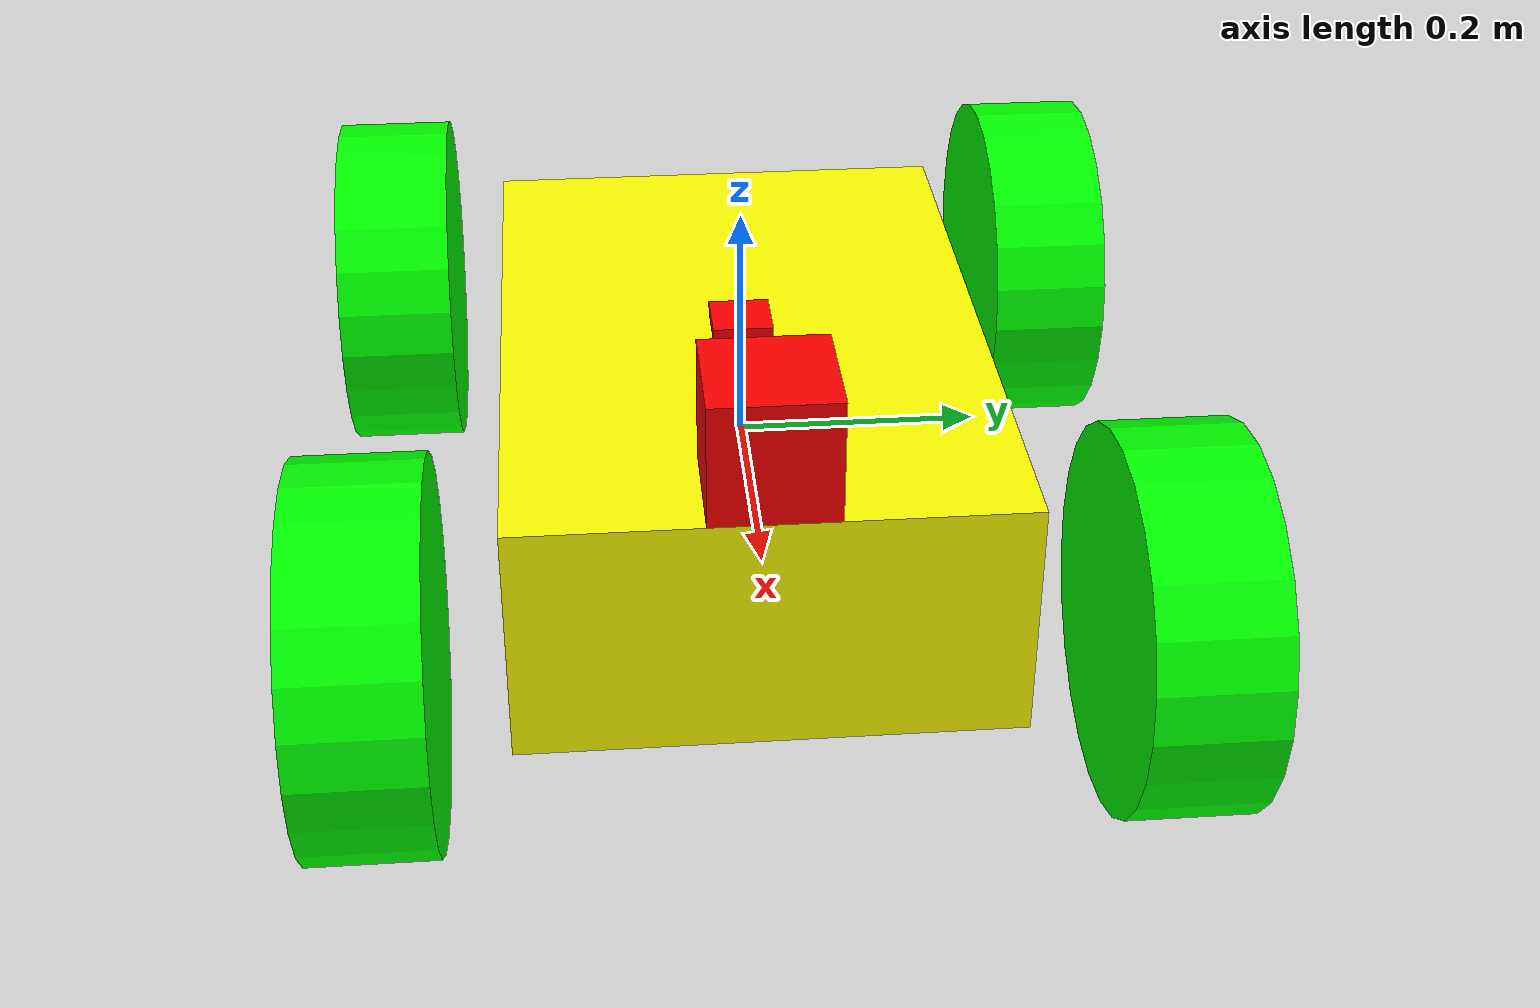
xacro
<?xml version="1.0"?>
<!-- rover -->
<robot name="rover" xmlns:xacro="http://www.ros.org/wiki/xacro">

  <!-- constants for robot dimensions -->
  <xacro:property name="PI" value="3.1415926535897931"/>

  <!-- define colors -->
  <material name="black">
    <color rgba="0.0 0.0 0.0 1.0"/>
  </material>

  <material name="red">
    <color rgba="${255/255} ${0/255} ${0/255} 1.0"/>
  </material>

  <material name="green">
    <color rgba="${0/255} ${255/255} ${0/255} 1.0"/>
  </material>

  <material name="blue">
    <color rgba="${0/255} ${0/255} ${255/255} 1.0"/>
  </material>

  <material name="yellow">
    <color rgba="${255/255} ${255/255} ${0/255} 1.0"/>
  </material>

  <material name="orange">
    <color rgba="${255/255} ${215/255} ${0/255} 1.0"/>
  </material>

  <!-- base dimensions -->
  <xacro:property name="base_x_size" value="0.6" />
  <xacro:property name="base_y_size" value="0.4" />
  <xacro:property name="base_z_size" value="0.2" />

  <!-- wheel properties -->
  <xacro:property name="wheel_length" value="0.1" />
  <xacro:property name="wheel_radius" value="0.15" />

  <!-- base link -->
  <link name="base_link">
    <visual>
      <geometry>
        <box size="${base_x_size} ${base_y_size} ${base_z_size}"/>
      </geometry>
      <material name="yellow"/>
    </visual>
    <collision>
      <geometry>
        <box size="${base_x_size} ${base_y_size} ${base_z_size}"/>
      </geometry>
    </collision>
    <inertial>
      <origin xyz="0 0 0" rpy="0 0 0"/>
      <mass value="1.0"/>
      <inertia
        ixx="0.133" ixy="0.0" ixz="0.0"
        iyy="0.133" iyz="0.0"
        izz="0.133"/>
    </inertial>
  </link>

  <!-- wheels -->
  <link name="front_left_wheel_link">
    <visual>
      <origin xyz="0 0 0" rpy="${PI/2} 0 0" />
      <geometry>
        <cylinder length="${wheel_length}" radius="${wheel_radius}" />
      </geometry>
      <material name="green"/>
    </visual>
    <collision>
      <origin xyz="0 0 0" rpy="${PI/2} 0 0" />
      <geometry>
        <cylinder length="${wheel_length}" radius="${wheel_radius}" />
      </geometry>
    </collision>
    <inertial>
      <origin xyz="0 0 0" rpy="0 0 0"/>
      <mass value="0.1"/>
      <inertia
        ixx="0.0133" ixy="0.0" ixz="0.0"
        iyy="0.0133" iyz="0.0"
        izz="0.0133"/>
    </inertial>
  </link>

  <joint name="front_left_wheel_joint" type="continuous">
    <parent link="base_link"/>
    <child link="front_left_wheel_link"/>
    <origin xyz="${(base_x_size/2)} ${(base_y_size/2 + wheel_length)} 0" rpy="0 0 0"/>
    <axis xyz="0 1 0"/>
    <dynamics damping="0.01"/>
  </joint>

  <link name="front_right_wheel_link">
    <visual>
      <origin xyz="0 0 0" rpy="${PI/2} 0 0" />
      <geometry>
        <cylinder length="${wheel_length}" radius="${wheel_radius}" />
      </geometry>
      <material name="green"/>
    </visual>
    <collision>
      <origin xyz="0 0 0" rpy="${PI/2} 0 0" />
      <geometry>
        <cylinder length="${wheel_length}" radius="${wheel_radius}" />
      </geometry>
    </collision>
    <inertial>
      <origin xyz="0 0 0" rpy="0 0 0"/>
      <mass value="0.1"/>
      <inertia
        ixx="0.0133" ixy="0.0" ixz="0.0"
        iyy="0.0133" iyz="0.0"
        izz="0.0133"/>
    </inertial>
  </link>

  <joint name="front_right_wheel_joint" type="continuous">
    <parent link="base_link"/>
    <child link="front_right_wheel_link"/>
    <origin xyz="${(base_x_size/2)} ${-1*(base_y_size/2 + wheel_length)} 0" rpy="0 0 0"/>
    <axis xyz="0 1 0"/>
    <dynamics damping="0.01"/>
  </joint>

  <link name="rear_left_wheel_link">
    <visual>
      <origin xyz="0 0 0" rpy="${PI/2} 0 0" />
      <geometry>
        <cylinder length="${wheel_length}" radius="${wheel_radius}" />
      </geometry>
      <material name="green"/>
    </visual>
    <collision>
      <origin xyz="0 0 0" rpy="${PI/2} 0 0" />
      <geometry>
        <cylinder length="${wheel_length}" radius="${wheel_radius}" />
      </geometry>
    </collision>
    <inertial>
      <origin xyz="0 0 0" rpy="0 0 0"/>
      <mass value="0.1"/>
      <inertia
        ixx="0.0133" ixy="0.0" ixz="0.0"
        iyy="0.0133" iyz="0.0"
        izz="0.0133"/>
    </inertial>
  </link>

  <joint name="rear_left_wheel_joint" type="continuous">
    <parent link="base_link"/>
    <child link="rear_left_wheel_link"/>
    <origin xyz="${-1*(base_x_size/2)} ${(base_y_size/2 + wheel_length)} 0" rpy="0 0 0"/>
    <axis xyz="0 1 0"/>
    <dynamics damping="0.01"/>
  </joint>

  <link name="rear_right_wheel_link">
    <visual>
      <origin xyz="0 0 0" rpy="${PI/2} 0 0" />
      <geometry>
        <cylinder length="${wheel_length}" radius="${wheel_radius}" />
      </geometry>
      <material name="green"/>
    </visual>
    <collision>
      <origin xyz="0 0 0" rpy="${PI/2} 0 0" />
      <geometry>
        <cylinder length="${wheel_length}" radius="${wheel_radius}" />
      </geometry>
    </collision>
    <inertial>
      <origin xyz="0 0 0" rpy="0 0 0"/>
      <mass value="0.1"/>
      <inertia
        ixx="0.0133" ixy="0.0" ixz="0.0"
        iyy="0.0133" iyz="0.0"
        izz="0.0133"/>
    </inertial>
  </link>

  <joint name="rear_right_wheel_joint" type="continuous">
    <parent link="base_link"/>
    <child link="rear_right_wheel_link"/>
    <origin xyz="${-1*(base_x_size/2)} ${-1*(base_y_size/2 + wheel_length)} 0" rpy="0 0 0"/>
    <axis xyz="0 1 0"/>
    <dynamics damping="0.01"/>
  </joint>

  <!-- sensors -->
  <link name="imu_link">
    <visual>
      <origin xyz="0 0 0" rpy="0 0 0" />
      <geometry>
        <box size="0.05 0.05 0.01"/>
      </geometry>
      <material name="red"/>
    </visual>
    <collision>
      <origin xyz="0 0 0" rpy="0 0 0" />
      <geometry>
        <box size="0.05 0.05 0.01"/>
      </geometry>
    </collision>
    <inertial>
      <origin xyz="0 0 0" rpy="0 0 0"/>
      <mass value="0.01"/>
      <inertia
        ixx="0.00133" ixy="0.0" ixz="0.0"
        iyy="0.00133" iyz="0.0"
        izz="0.00133"/>
    </inertial>
  </link>
  <joint name="imu_joint" type="fixed">
    <parent link="base_link"/>
    <child link="imu_link"/>
    <origin xyz="0 0 ${base_z_size/2+0.005}" rpy="0 0 0"/>
    <axis xyz="0 0 1"/>
  </joint>

  <link name="lidar_link">
    <visual>
      <origin xyz="0 0 0" rpy="0 0 0" />
      <geometry>
        <box size="0.1 0.1 0.1"/>
      </geometry>
      <material name="red"/>
    </visual>
    <collision>
      <origin xyz="0 0 0" rpy="0 0 0" />
      <geometry>
        <box size="0.1 0.1 0.1"/>
      </geometry>
    </collision>
    <inertial>
      <origin xyz="0 0 0" rpy="0 0 0"/>
      <mass value="0.1"/>
      <inertia
        ixx="0.0133" ixy="0.0" ixz="0.0"
        iyy="0.0133" iyz="0.0"
        izz="0.0133"/>
    </inertial>
  </link>
  <joint name="lidar_joint" type="fixed">
    <parent link="base_link"/>
    <child link="lidar_link"/>
    <origin xyz="${base_x_size/2-0.05} 0 ${base_z_size/2+0.05}" rpy="0 0 0"/>
    <axis xyz="0 0 1"/>
  </joint>

  <!-- gazebo links -->
  <gazebo reference="base_link">
  </gazebo>

  <gazebo reference="front_left_wheel_link">
  </gazebo>
  <gazebo reference="front_left_wheel_joint">
  </gazebo>
  <gazebo reference="front_right_wheel_link">
  </gazebo>
  <gazebo reference="front_right_wheel_joint">
  </gazebo>
  <gazebo reference="rear_left_wheel_link">
  </gazebo>
  <gazebo reference="rear_left_wheel_joint">
  </gazebo>
  <gazebo reference="rear_right_wheel_link">
  </gazebo>
  <gazebo reference="rear_right_wheel_joint">
  </gazebo>

  <gazebo reference="imu_link">
    <sensor name="imu_sensor" type="imu">
      <pose>0 0 0 ${PI} 0 0</pose>
      <always_on>1</always_on>
      <update_rate>1000.0</update_rate>
    </sensor>
  </gazebo>
  <gazebo reference="imu_joint">
  </gazebo>

  <gazebo reference="lidar_link">
    <sensor name='gpu_lidar' type='gpu_lidar'>
      <topic>lidar</topic>
      <update_rate>10</update_rate>
      <lidar>
        <scan>
          <horizontal>
            <samples>640</samples>
            <resolution>1</resolution>
            <min_angle>-1.396263</min_angle>
            <max_angle>1.396263</max_angle>
          </horizontal>
          <vertical>
            <samples>16</samples>
            <resolution>1</resolution>
            <min_angle>-0.261799</min_angle>
            <max_angle>0.261799</max_angle>
          </vertical>
        </scan>
        <range>
          <min>0.08</min>
          <max>10.0</max>
          <resolution>0.01</resolution>
        </range>
      </lidar>
      <alwaysOn>1</alwaysOn>
      <visualize>true</visualize>
    </sensor>
  </gazebo>
  <gazebo reference="lidar_joint">
  </gazebo>

  <!-- gazebo plugins -->
  <gazebo>
    <plugin filename="libignition-gazebo-joint-state-publisher-system.so"
            name="ignition::gazebo::systems::JointStatePublisher"/>

    <plugin filename="libignition-gazebo-apply-joint-force-system.so"
            name="ignition::gazebo::systems::ApplyJointForce">
      <joint_name>front_left_wheel_joint</joint_name>
    </plugin>
    <plugin filename="libignition-gazebo-apply-joint-force-system.so"
            name="ignition::gazebo::systems::ApplyJointForce">
      <joint_name>front_right_wheel_joint</joint_name>
    </plugin>
    <plugin filename="libignition-gazebo-apply-joint-force-system.so"
            name="ignition::gazebo::systems::ApplyJointForce">
      <joint_name>rear_left_wheel_joint</joint_name>
    </plugin>
    <plugin filename="libignition-gazebo-apply-joint-force-system.so"
            name="ignition::gazebo::systems::ApplyJointForce">
      <joint_name>rear_right_wheel_joint</joint_name>
    </plugin>

      <!--
          SERVO1_FUNCTION   73 (Throttle Left)
          SERVO1_MAX        2000
          SERVO1_MIN        1000
          SERVO1_REVERSED   0
          SERVO1_TRIM       1500
       -->

      <!--
          SERVO3_FUNCTION   74 (Throttle Right)
          SERVO3_MAX        2000
          SERVO3_MIN        1000
          SERVO3_REVERSED   0
          SERVO3_TRIM       1500
       -->

  </gazebo>

</robot>
